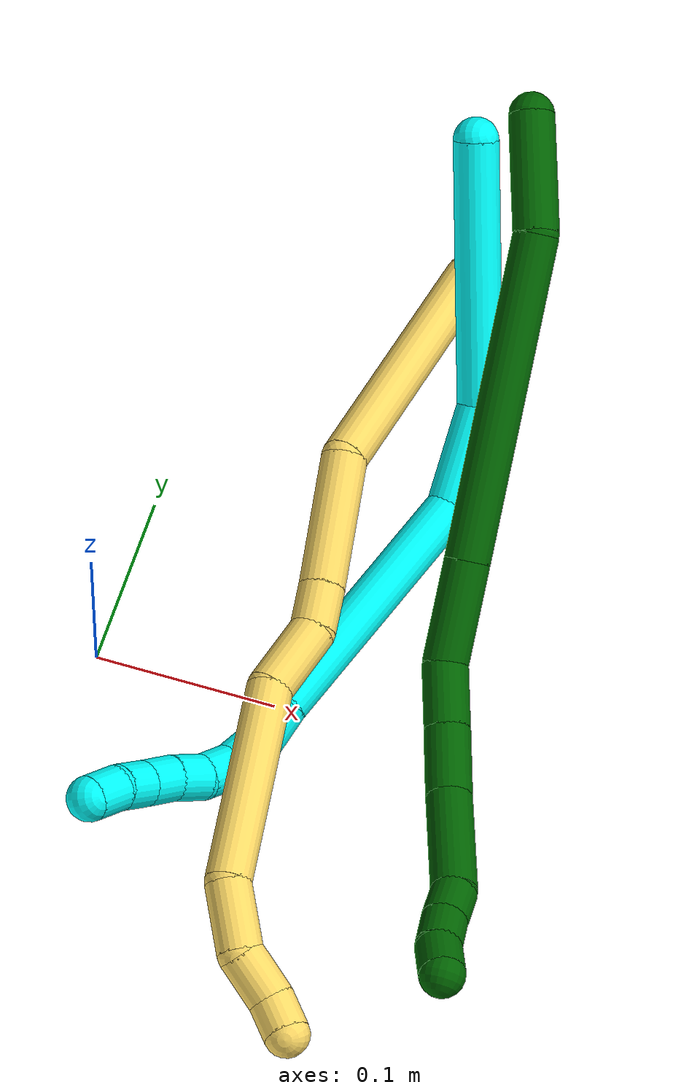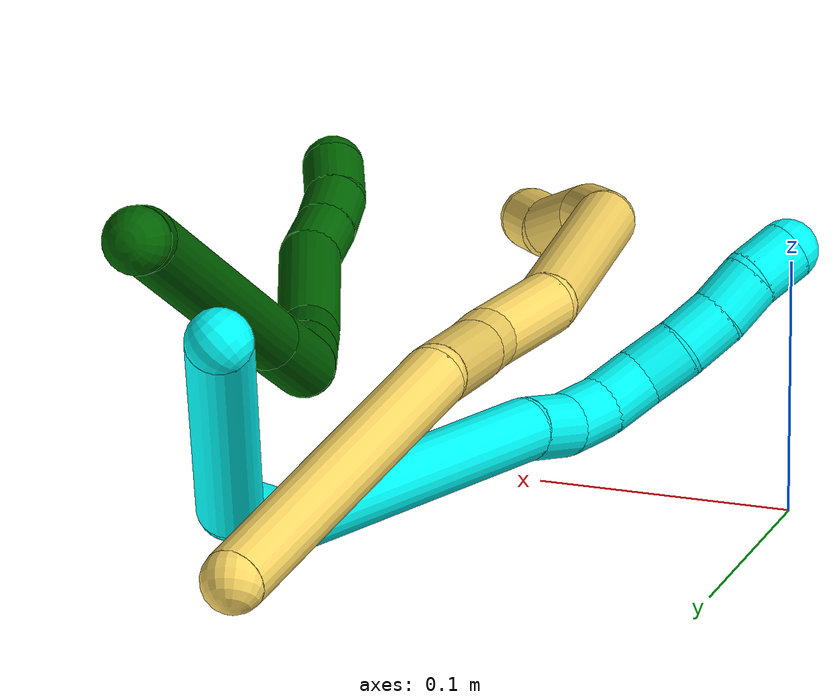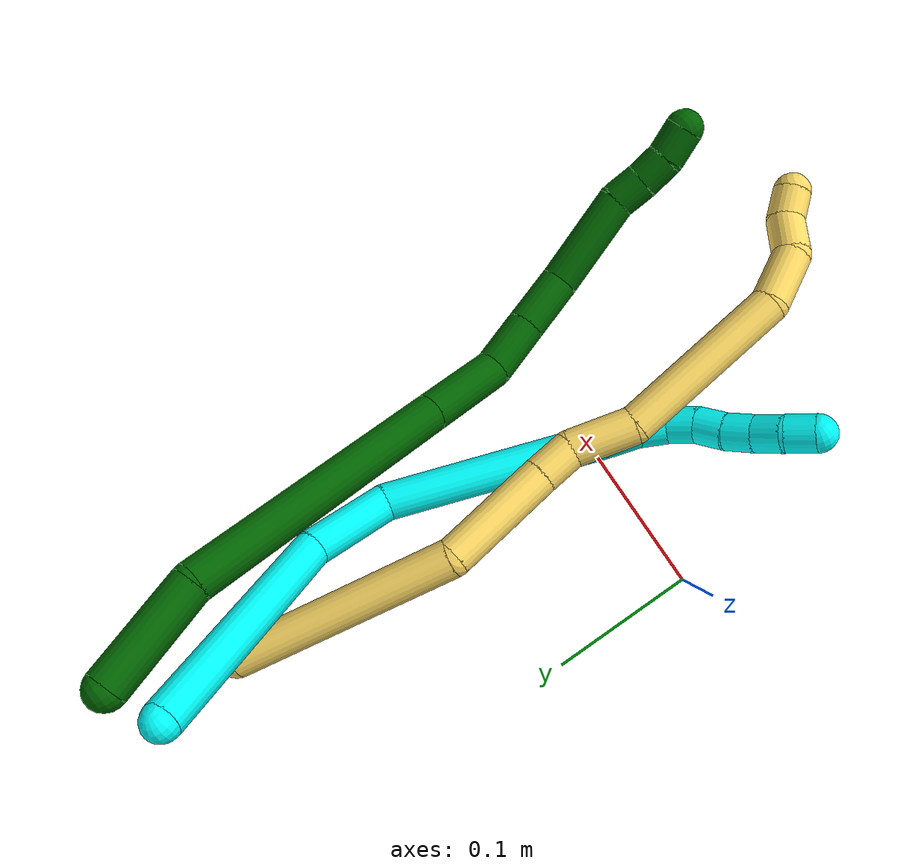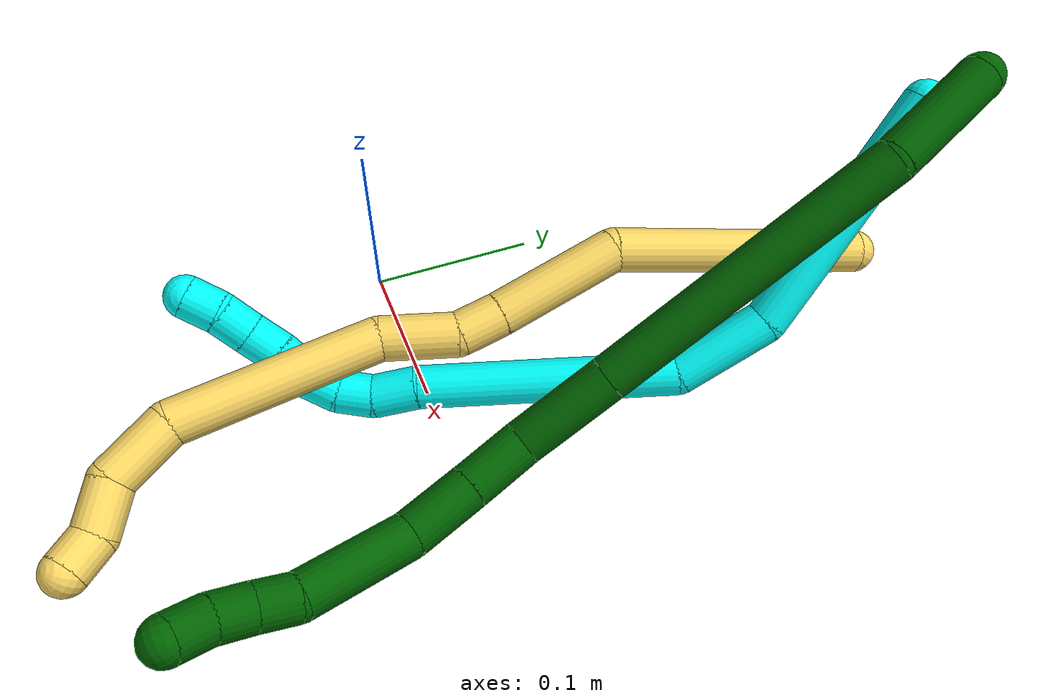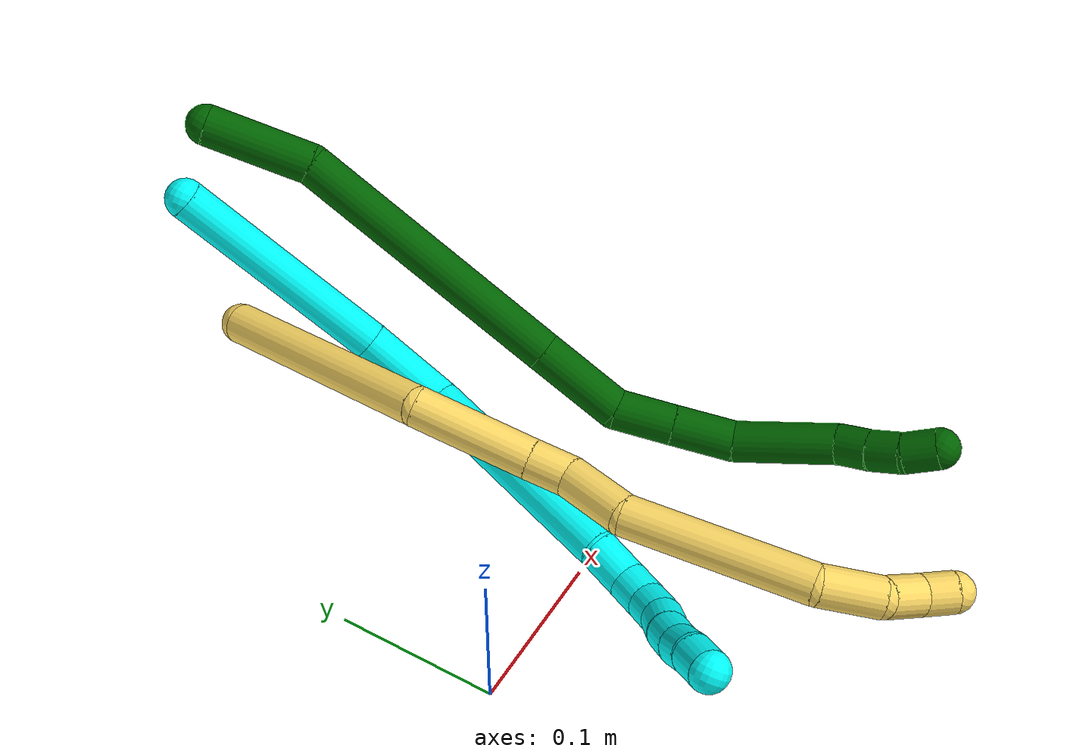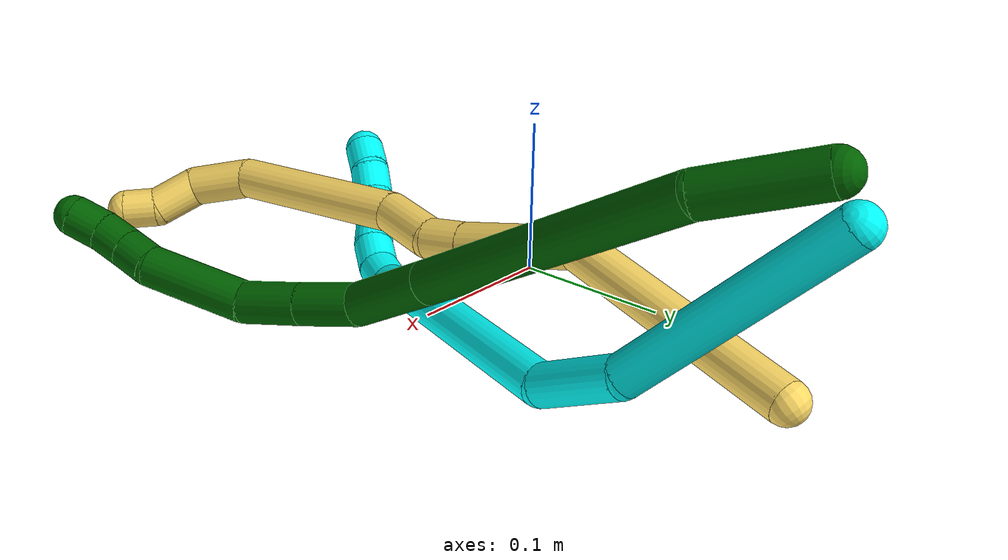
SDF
<sdf version="1.7">
 <world name="default">
  <model name="3">
   <static>0</static>
   <link name="3">
    <collision name="collision-cylinder-e_1_1_4">
     <pose>0.029283 -0.063951 -0.01992 1.87276 0.412139 0.553531</pose>
     <geometry><cylinder><radius>0.0125</radius><length>0.146206</length></cylinder></geometry>
     <surface>
      <friction><ode><mu>1.16</mu><mu2>1.16</mu2><slip1>0</slip1><slip2>0</slip2></ode></friction>
      <contact><ode><kp>1e+06</kp><kd>1</kd><max_vel>0</max_vel><min_depth>0.001</min_depth></ode></contact>
     </surface>
    </collision>
    <visual name="visual-cylinder-e_1_1_4">
     <pose>0.029283 -0.063951 -0.01992 1.87276 0.412139 0.553531</pose>
     <geometry><cylinder><radius>0.0125</radius><length>0.146206</length></cylinder></geometry>
     <material><ambient>0.003922 1 0.996078 1</ambient></material>
    </visual>
    <collision name="collision-cylinder-e_2_4_5">
     <pose>0.058099 -0.155632 -0.047689 1.84662 -0.016202 -0.021424</pose>
     <geometry><cylinder><radius>0.0125</radius><length>0.057645</length></cylinder></geometry>
     <surface>
      <friction><ode><mu>1.16</mu><mu2>1.16</mu2><slip1>0</slip1><slip2>0</slip2></ode></friction>
      <contact><ode><kp>1e+06</kp><kd>1</kd><max_vel>0</max_vel><min_depth>0.001</min_depth></ode></contact>
     </surface>
    </collision>
    <visual name="visual-cylinder-e_2_4_5">
     <pose>0.058099 -0.155632 -0.047689 1.84662 -0.016202 -0.021424</pose>
     <geometry><cylinder><radius>0.0125</radius><length>0.057645</length></cylinder></geometry>
     <material><ambient>0.003922 1 0.996078 1</ambient></material>
    </visual>
    <collision name="collision-cylinder-e_3_5_6">
     <pose>0.020545 -0.245709 -0.071788 1.82576 -0.522293 -0.665917</pose>
     <geometry><cylinder><radius>0.0125</radius><length>0.148685</length></cylinder></geometry>
     <surface>
      <friction><ode><mu>1.16</mu><mu2>1.16</mu2><slip1>0</slip1><slip2>0</slip2></ode></friction>
      <contact><ode><kp>1e+06</kp><kd>1</kd><max_vel>0</max_vel><min_depth>0.001</min_depth></ode></contact>
     </surface>
    </collision>
    <visual name="visual-cylinder-e_3_5_6">
     <pose>0.020545 -0.245709 -0.071788 1.82576 -0.522293 -0.665917</pose>
     <geometry><cylinder><radius>0.0125</radius><length>0.148685</length></cylinder></geometry>
     <material><ambient>0.003922 1 0.996078 1</ambient></material>
    </visual>
    <collision name="collision-cylinder-e_4_6_7">
     <pose>-0.021001 -0.319684 -0.092244 1.91791 -0.346106 -0.488308</pose>
     <geometry><cylinder><radius>0.0125</radius><length>0.026286</length></cylinder></geometry>
     <surface>
      <friction><ode><mu>1.16</mu><mu2>1.16</mu2><slip1>0</slip1><slip2>0</slip2></ode></friction>
      <contact><ode><kp>1e+06</kp><kd>1</kd><max_vel>0</max_vel><min_depth>0.001</min_depth></ode></contact>
     </surface>
    </collision>
    <visual name="visual-cylinder-e_4_6_7">
     <pose>-0.021001 -0.319684 -0.092244 1.91791 -0.346106 -0.488308</pose>
     <geometry><cylinder><radius>0.0125</radius><length>0.026286</length></cylinder></geometry>
     <material><ambient>0.003922 1 0.996078 1</ambient></material>
    </visual>
    <collision name="collision-cylinder-e_5_7_8">
     <pose>-0.032267 -0.338796 -0.098559 1.84543 -0.718988 -0.921446</pose>
     <geometry><cylinder><radius>0.0125</radius><length>0.020672</length></cylinder></geometry>
     <surface>
      <friction><ode><mu>1.16</mu><mu2>1.16</mu2><slip1>0</slip1><slip2>0</slip2></ode></friction>
      <contact><ode><kp>1e+06</kp><kd>1</kd><max_vel>0</max_vel><min_depth>0.001</min_depth></ode></contact>
     </surface>
    </collision>
    <visual name="visual-cylinder-e_5_7_8">
     <pose>-0.032267 -0.338796 -0.098559 1.84543 -0.718988 -0.921446</pose>
     <geometry><cylinder><radius>0.0125</radius><length>0.020672</length></cylinder></geometry>
     <material><ambient>0.003922 1 0.996078 1</ambient></material>
    </visual>
    <collision name="collision-cylinder-e_6_8_9">
     <pose>-0.047885 -0.351312 -0.101465 1.72792 -1.04666 -1.18833</pose>
     <geometry><cylinder><radius>0.0125</radius><length>0.020352</length></cylinder></geometry>
     <surface>
      <friction><ode><mu>1.16</mu><mu2>1.16</mu2><slip1>0</slip1><slip2>0</slip2></ode></friction>
      <contact><ode><kp>1e+06</kp><kd>1</kd><max_vel>0</max_vel><min_depth>0.001</min_depth></ode></contact>
     </surface>
    </collision>
    <visual name="visual-cylinder-e_6_8_9">
     <pose>-0.047885 -0.351312 -0.101465 1.72792 -1.04666 -1.18833</pose>
     <geometry><cylinder><radius>0.0125</radius><length>0.020352</length></cylinder></geometry>
     <material><ambient>0.003922 1 0.996078 1</ambient></material>
    </visual>
    <collision name="collision-cylinder-e_7_9_10">
     <pose>-0.066335 -0.358797 -0.1034 2.0048 -1.29715 -1.74115</pose>
     <geometry><cylinder><radius>0.0125</radius><length>0.020025</length></cylinder></geometry>
     <surface>
      <friction><ode><mu>1.16</mu><mu2>1.16</mu2><slip1>0</slip1><slip2>0</slip2></ode></friction>
      <contact><ode><kp>1e+06</kp><kd>1</kd><max_vel>0</max_vel><min_depth>0.001</min_depth></ode></contact>
     </surface>
    </collision>
    <visual name="visual-cylinder-e_7_9_10">
     <pose>-0.066335 -0.358797 -0.1034 2.0048 -1.29715 -1.74115</pose>
     <geometry><cylinder><radius>0.0125</radius><length>0.020025</length></cylinder></geometry>
     <material><ambient>0.003922 1 0.996078 1</ambient></material>
    </visual>
    <collision name="collision-cylinder-e_8_10_11">
     <pose>-0.08529 -0.364975 -0.104866 1.65875 -1.18921 -1.2722</pose>
     <geometry><cylinder><radius>0.0125</radius><length>0.020074</length></cylinder></geometry>
     <surface>
      <friction><ode><mu>1.16</mu><mu2>1.16</mu2><slip1>0</slip1><slip2>0</slip2></ode></friction>
      <contact><ode><kp>1e+06</kp><kd>1</kd><max_vel>0</max_vel><min_depth>0.001</min_depth></ode></contact>
     </surface>
    </collision>
    <visual name="visual-cylinder-e_8_10_11">
     <pose>-0.08529 -0.364975 -0.104866 1.65875 -1.18921 -1.2722</pose>
     <geometry><cylinder><radius>0.0125</radius><length>0.020074</length></cylinder></geometry>
     <material><ambient>0.003922 1 0.996078 1</ambient></material>
    </visual>
    <collision name="collision-cylinder-e_9_11_12">
     <pose>-0.103946 -0.372118 -0.104113 1.26446 -1.20425 -0.932796</pose>
     <geometry><cylinder><radius>0.0125</radius><length>0.020012</length></cylinder></geometry>
     <surface>
      <friction><ode><mu>1.16</mu><mu2>1.16</mu2><slip1>0</slip1><slip2>0</slip2></ode></friction>
      <contact><ode><kp>1e+06</kp><kd>1</kd><max_vel>0</max_vel><min_depth>0.001</min_depth></ode></contact>
     </surface>
    </collision>
    <visual name="visual-cylinder-e_9_11_12">
     <pose>-0.103946 -0.372118 -0.104113 1.26446 -1.20425 -0.932796</pose>
     <geometry><cylinder><radius>0.0125</radius><length>0.020012</length></cylinder></geometry>
     <material><ambient>0.003922 1 0.996078 1</ambient></material>
    </visual>
    <collision name="collision-cylinder-e_10_12_2">
     <pose>-0.121983 -0.380484 -0.103609 1.68697 -1.05067 -1.1545</pose>
     <geometry><cylinder><radius>0.0125</radius><length>0.020043</length></cylinder></geometry>
     <surface>
      <friction><ode><mu>1.16</mu><mu2>1.16</mu2><slip1>0</slip1><slip2>0</slip2></ode></friction>
      <contact><ode><kp>1e+06</kp><kd>1</kd><max_vel>0</max_vel><min_depth>0.001</min_depth></ode></contact>
     </surface>
    </collision>
    <visual name="visual-cylinder-e_10_12_2">
     <pose>-0.121983 -0.380484 -0.103609 1.68697 -1.05067 -1.1545</pose>
     <geometry><cylinder><radius>0.0125</radius><length>0.020043</length></cylinder></geometry>
     <material><ambient>0.003922 1 0.996078 1</ambient></material>
    </visual>
    <collision name="collision-sphere-2">
     <pose>-0.130679 -0.385431 -0.104186 0 -0 0</pose>
     <geometry><sphere><radius>0.0125</radius></sphere></geometry>
     <surface>
      <friction><ode><mu>1.16</mu><mu2>1.16</mu2><slip1>0</slip1><slip2>0</slip2></ode></friction>
      <contact><ode><kp>1e+06</kp><kd>1</kd><max_vel>0</max_vel><min_depth>0.001</min_depth></ode></contact>
     </surface>
    </collision>
    <visual name="visual-sphere-2">
     <pose>-0.130679 -0.385431 -0.104186 0 -0 0</pose>
     <geometry><sphere><radius>0.0125</radius></sphere></geometry>
     <material><ambient>0.003922 1 0.996078 1</ambient></material>
    </visual>
    <collision name="collision-sphere-12">
     <pose>-0.113287 -0.375537 -0.103032 0 -0 0</pose>
     <geometry><sphere><radius>0.0125</radius></sphere></geometry>
     <surface>
      <friction><ode><mu>1.16</mu><mu2>1.16</mu2><slip1>0</slip1><slip2>0</slip2></ode></friction>
      <contact><ode><kp>1e+06</kp><kd>1</kd><max_vel>0</max_vel><min_depth>0.001</min_depth></ode></contact>
     </surface>
    </collision>
    <visual name="visual-sphere-12">
     <pose>-0.113287 -0.375537 -0.103032 0 -0 0</pose>
     <geometry><sphere><radius>0.0125</radius></sphere></geometry>
     <material><ambient>0.003922 1 0.996078 1</ambient></material>
    </visual>
    <collision name="collision-sphere-11">
     <pose>-0.094605 -0.368699 -0.105194 0 -0 0</pose>
     <geometry><sphere><radius>0.0125</radius></sphere></geometry>
     <surface>
      <friction><ode><mu>1.16</mu><mu2>1.16</mu2><slip1>0</slip1><slip2>0</slip2></ode></friction>
      <contact><ode><kp>1e+06</kp><kd>1</kd><max_vel>0</max_vel><min_depth>0.001</min_depth></ode></contact>
     </surface>
    </collision>
    <visual name="visual-sphere-11">
     <pose>-0.094605 -0.368699 -0.105194 0 -0 0</pose>
     <geometry><sphere><radius>0.0125</radius></sphere></geometry>
     <material><ambient>0.003922 1 0.996078 1</ambient></material>
    </visual>
    <collision name="collision-sphere-10">
     <pose>-0.075975 -0.361252 -0.104538 0 -0 0</pose>
     <geometry><sphere><radius>0.0125</radius></sphere></geometry>
     <surface>
      <friction><ode><mu>1.16</mu><mu2>1.16</mu2><slip1>0</slip1><slip2>0</slip2></ode></friction>
      <contact><ode><kp>1e+06</kp><kd>1</kd><max_vel>0</max_vel><min_depth>0.001</min_depth></ode></contact>
     </surface>
    </collision>
    <visual name="visual-sphere-10">
     <pose>-0.075975 -0.361252 -0.104538 0 -0 0</pose>
     <geometry><sphere><radius>0.0125</radius></sphere></geometry>
     <material><ambient>0.003922 1 0.996078 1</ambient></material>
    </visual>
    <collision name="collision-sphere-9">
     <pose>-0.056695 -0.356342 -0.102262 0 -0 0</pose>
     <geometry><sphere><radius>0.0125</radius></sphere></geometry>
     <surface>
      <friction><ode><mu>1.16</mu><mu2>1.16</mu2><slip1>0</slip1><slip2>0</slip2></ode></friction>
      <contact><ode><kp>1e+06</kp><kd>1</kd><max_vel>0</max_vel><min_depth>0.001</min_depth></ode></contact>
     </surface>
    </collision>
    <visual name="visual-sphere-9">
     <pose>-0.056695 -0.356342 -0.102262 0 -0 0</pose>
     <geometry><sphere><radius>0.0125</radius></sphere></geometry>
     <material><ambient>0.003922 1 0.996078 1</ambient></material>
    </visual>
    <collision name="collision-sphere-4">
     <pose>0.058566 -0.127903 -0.03984 0 -0 0</pose>
     <geometry><sphere><radius>0.0125</radius></sphere></geometry>
     <surface>
      <friction><ode><mu>1.16</mu><mu2>1.16</mu2><slip1>0</slip1><slip2>0</slip2></ode></friction>
      <contact><ode><kp>1e+06</kp><kd>1</kd><max_vel>0</max_vel><min_depth>0.001</min_depth></ode></contact>
     </surface>
    </collision>
    <visual name="visual-sphere-4">
     <pose>0.058566 -0.127903 -0.03984 0 -0 0</pose>
     <geometry><sphere><radius>0.0125</radius></sphere></geometry>
     <material><ambient>0.003922 1 0.996078 1</ambient></material>
    </visual>
    <collision name="collision-sphere-1">
     <geometry><sphere><radius>0.0125</radius></sphere></geometry>
     <surface>
      <friction><ode><mu>1.16</mu><mu2>1.16</mu2><slip1>0</slip1><slip2>0</slip2></ode></friction>
      <contact><ode><kp>1e+06</kp><kd>1</kd><max_vel>0</max_vel><min_depth>0.001</min_depth></ode></contact>
     </surface>
    </collision>
    <visual name="visual-sphere-1">
     <geometry><sphere><radius>0.0125</radius></sphere></geometry>
     <material><ambient>0.003922 1 0.996078 1</ambient></material>
    </visual>
    <collision name="collision-sphere-8">
     <pose>-0.039075 -0.346282 -0.100668 0 -0 0</pose>
     <geometry><sphere><radius>0.0125</radius></sphere></geometry>
     <surface>
      <friction><ode><mu>1.16</mu><mu2>1.16</mu2><slip1>0</slip1><slip2>0</slip2></ode></friction>
      <contact><ode><kp>1e+06</kp><kd>1</kd><max_vel>0</max_vel><min_depth>0.001</min_depth></ode></contact>
     </surface>
    </collision>
    <visual name="visual-sphere-8">
     <pose>-0.039075 -0.346282 -0.100668 0 -0 0</pose>
     <geometry><sphere><radius>0.0125</radius></sphere></geometry>
     <material><ambient>0.003922 1 0.996078 1</ambient></material>
    </visual>
    <collision name="collision-sphere-5">
     <pose>0.057632 -0.183361 -0.055537 0 -0 0</pose>
     <geometry><sphere><radius>0.0125</radius></sphere></geometry>
     <surface>
      <friction><ode><mu>1.16</mu><mu2>1.16</mu2><slip1>0</slip1><slip2>0</slip2></ode></friction>
      <contact><ode><kp>1e+06</kp><kd>1</kd><max_vel>0</max_vel><min_depth>0.001</min_depth></ode></contact>
     </surface>
    </collision>
    <visual name="visual-sphere-5">
     <pose>0.057632 -0.183361 -0.055537 0 -0 0</pose>
     <geometry><sphere><radius>0.0125</radius></sphere></geometry>
     <material><ambient>0.003922 1 0.996078 1</ambient></material>
    </visual>
    <collision name="collision-sphere-6">
     <pose>-0.016543 -0.308058 -0.088038 0 -0 0</pose>
     <geometry><sphere><radius>0.0125</radius></sphere></geometry>
     <surface>
      <friction><ode><mu>1.16</mu><mu2>1.16</mu2><slip1>0</slip1><slip2>0</slip2></ode></friction>
      <contact><ode><kp>1e+06</kp><kd>1</kd><max_vel>0</max_vel><min_depth>0.001</min_depth></ode></contact>
     </surface>
    </collision>
    <visual name="visual-sphere-6">
     <pose>-0.016543 -0.308058 -0.088038 0 -0 0</pose>
     <geometry><sphere><radius>0.0125</radius></sphere></geometry>
     <material><ambient>0.003922 1 0.996078 1</ambient></material>
    </visual>
    <collision name="collision-sphere-7">
     <pose>-0.02546 -0.33131 -0.09645 0 -0 0</pose>
     <geometry><sphere><radius>0.0125</radius></sphere></geometry>
     <surface>
      <friction><ode><mu>1.16</mu><mu2>1.16</mu2><slip1>0</slip1><slip2>0</slip2></ode></friction>
      <contact><ode><kp>1e+06</kp><kd>1</kd><max_vel>0</max_vel><min_depth>0.001</min_depth></ode></contact>
     </surface>
    </collision>
    <visual name="visual-sphere-7">
     <pose>-0.02546 -0.33131 -0.09645 0 -0 0</pose>
     <geometry><sphere><radius>0.0125</radius></sphere></geometry>
     <material><ambient>0.003922 1 0.996078 1</ambient></material>
    </visual>
    <inertial>
     <pose>0.001852 -0.213991 -0.062396 0 -0 0</pose>
     <mass>0.5</mass>
     <inertia>
      <ixx>0.000383</ixx>
      <ixy>0</ixy>
      <ixz>0</ixz>
      <iyy>-4.1e-05</iyy>
      <iyz>0</iyz>
      <izz>0.000525</izz>
     </inertia>
    </inertial>
   </link>
   <pose>0.122764 0.286833 0.146912 0.359959 0.747107 0.455718</pose>
  </model>
  <model name="5">
   <static>0</static>
   <link name="5">
    <collision name="collision-cylinder-e_1_1_4">
     <pose>0.00915 -0.048112 0.059326 0.681399 0.119227 0.042313</pose>
     <geometry><cylinder><radius>0.0125</radius><length>0.153858</length></cylinder></geometry>
     <surface>
      <friction><ode><mu>1.16</mu><mu2>1.16</mu2><slip1>0</slip1><slip2>0</slip2></ode></friction>
      <contact><ode><kp>1e+06</kp><kd>1</kd><max_vel>0</max_vel><min_depth>0.001</min_depth></ode></contact>
     </surface>
    </collision>
    <visual name="visual-cylinder-e_1_1_4">
     <pose>0.00915 -0.048112 0.059326 0.681399 0.119227 0.042313</pose>
     <geometry><cylinder><radius>0.0125</radius><length>0.153858</length></cylinder></geometry>
     <material><ambient>1 0.858824 0.4 1</ambient></material>
    </visual>
    <collision name="collision-cylinder-e_2_4_5">
     <pose>0.038492 -0.120794 0.13782 0.908272 0.574917 0.28667</pose>
     <geometry><cylinder><radius>0.0125</radius><length>0.074264</length></cylinder></geometry>
     <surface>
      <friction><ode><mu>1.16</mu><mu2>1.16</mu2><slip1>0</slip1><slip2>0</slip2></ode></friction>
      <contact><ode><kp>1e+06</kp><kd>1</kd><max_vel>0</max_vel><min_depth>0.001</min_depth></ode></contact>
     </surface>
    </collision>
    <visual name="visual-cylinder-e_2_4_5">
     <pose>0.038492 -0.120794 0.13782 0.908272 0.574917 0.28667</pose>
     <geometry><cylinder><radius>0.0125</radius><length>0.074264</length></cylinder></geometry>
     <material><ambient>1 0.858824 0.4 1</ambient></material>
    </visual>
    <collision name="collision-cylinder-e_3_5_6">
     <pose>0.06497 -0.153638 0.164184 0.855016 0.520623 0.241526</pose>
     <geometry><cylinder><radius>0.0125</radius><length>0.025279</length></cylinder></geometry>
     <surface>
      <friction><ode><mu>1.16</mu><mu2>1.16</mu2><slip1>0</slip1><slip2>0</slip2></ode></friction>
      <contact><ode><kp>1e+06</kp><kd>1</kd><max_vel>0</max_vel><min_depth>0.001</min_depth></ode></contact>
     </surface>
    </collision>
    <visual name="visual-cylinder-e_3_5_6">
     <pose>0.06497 -0.153638 0.164184 0.855016 0.520623 0.241526</pose>
     <geometry><cylinder><radius>0.0125</radius><length>0.025279</length></cylinder></geometry>
     <material><ambient>1 0.858824 0.4 1</ambient></material>
    </visual>
    <collision name="collision-cylinder-e_4_6_7">
     <pose>0.073647 -0.177868 0.185393 0.850111 0.112075 0.050773</pose>
     <geometry><cylinder><radius>0.0125</radius><length>0.042741</length></cylinder></geometry>
     <surface>
      <friction><ode><mu>1.16</mu><mu2>1.16</mu2><slip1>0</slip1><slip2>0</slip2></ode></friction>
      <contact><ode><kp>1e+06</kp><kd>1</kd><max_vel>0</max_vel><min_depth>0.001</min_depth></ode></contact>
     </surface>
    </collision>
    <visual name="visual-cylinder-e_4_6_7">
     <pose>0.073647 -0.177868 0.185393 0.850111 0.112075 0.050773</pose>
     <geometry><cylinder><radius>0.0125</radius><length>0.042741</length></cylinder></geometry>
     <material><ambient>1 0.858824 0.4 1</ambient></material>
    </visual>
    <collision name="collision-cylinder-e_5_7_8">
     <pose>0.102666 -0.228608 0.237306 0.742576 0.477663 0.18903</pose>
     <geometry><cylinder><radius>0.0125</radius><length>0.115852</length></cylinder></geometry>
     <surface>
      <friction><ode><mu>1.16</mu><mu2>1.16</mu2><slip1>0</slip1><slip2>0</slip2></ode></friction>
      <contact><ode><kp>1e+06</kp><kd>1</kd><max_vel>0</max_vel><min_depth>0.001</min_depth></ode></contact>
     </surface>
    </collision>
    <visual name="visual-cylinder-e_5_7_8">
     <pose>0.102666 -0.228608 0.237306 0.742576 0.477663 0.18903</pose>
     <geometry><cylinder><radius>0.0125</radius><length>0.115852</length></cylinder></geometry>
     <material><ambient>1 0.858824 0.4 1</ambient></material>
    </visual>
    <collision name="collision-cylinder-e_6_8_9">
     <pose>0.144288 -0.271684 0.283917 0.760649 0.894777 0.379063</pose>
     <geometry><cylinder><radius>0.0125</radius><length>0.038441</length></cylinder></geometry>
     <surface>
      <friction><ode><mu>1.16</mu><mu2>1.16</mu2><slip1>0</slip1><slip2>0</slip2></ode></friction>
      <contact><ode><kp>1e+06</kp><kd>1</kd><max_vel>0</max_vel><min_depth>0.001</min_depth></ode></contact>
     </surface>
    </collision>
    <visual name="visual-cylinder-e_6_8_9">
     <pose>0.144288 -0.271684 0.283917 0.760649 0.894777 0.379063</pose>
     <geometry><cylinder><radius>0.0125</radius><length>0.038441</length></cylinder></geometry>
     <material><ambient>1 0.858824 0.4 1</ambient></material>
    </visual>
    <collision name="collision-cylinder-e_7_9_10">
     <pose>0.173346 -0.281874 0.294163 0.891329 1.39893 0.764354</pose>
     <geometry><cylinder><radius>0.0125</radius><length>0.028551</length></cylinder></geometry>
     <surface>
      <friction><ode><mu>1.16</mu><mu2>1.16</mu2><slip1>0</slip1><slip2>0</slip2></ode></friction>
      <contact><ode><kp>1e+06</kp><kd>1</kd><max_vel>0</max_vel><min_depth>0.001</min_depth></ode></contact>
     </surface>
    </collision>
    <visual name="visual-cylinder-e_7_9_10">
     <pose>0.173346 -0.281874 0.294163 0.891329 1.39893 0.764354</pose>
     <geometry><cylinder><radius>0.0125</radius><length>0.028551</length></cylinder></geometry>
     <material><ambient>1 0.858824 0.4 1</ambient></material>
    </visual>
    <collision name="collision-cylinder-e_8_10_2">
     <pose>0.196215 -0.285692 0.301102 0.341223 0.993374 0.186222</pose>
     <geometry><cylinder><radius>0.0125</radius><length>0.021015</length></cylinder></geometry>
     <surface>
      <friction><ode><mu>1.16</mu><mu2>1.16</mu2><slip1>0</slip1><slip2>0</slip2></ode></friction>
      <contact><ode><kp>1e+06</kp><kd>1</kd><max_vel>0</max_vel><min_depth>0.001</min_depth></ode></contact>
     </surface>
    </collision>
    <visual name="visual-cylinder-e_8_10_2">
     <pose>0.196215 -0.285692 0.301102 0.341223 0.993374 0.186222</pose>
     <geometry><cylinder><radius>0.0125</radius><length>0.021015</length></cylinder></geometry>
     <material><ambient>1 0.858824 0.4 1</ambient></material>
    </visual>
    <collision name="collision-sphere-2">
     <pose>0.205019 -0.287612 0.306506 0 -0 0</pose>
     <geometry><sphere><radius>0.0125</radius></sphere></geometry>
     <surface>
      <friction><ode><mu>1.16</mu><mu2>1.16</mu2><slip1>0</slip1><slip2>0</slip2></ode></friction>
      <contact><ode><kp>1e+06</kp><kd>1</kd><max_vel>0</max_vel><min_depth>0.001</min_depth></ode></contact>
     </surface>
    </collision>
    <visual name="visual-sphere-2">
     <pose>0.205019 -0.287612 0.306506 0 -0 0</pose>
     <geometry><sphere><radius>0.0125</radius></sphere></geometry>
     <material><ambient>1 0.858824 0.4 1</ambient></material>
    </visual>
    <collision name="collision-sphere-10">
     <pose>0.187412 -0.283773 0.295697 0 -0 0</pose>
     <geometry><sphere><radius>0.0125</radius></sphere></geometry>
     <surface>
      <friction><ode><mu>1.16</mu><mu2>1.16</mu2><slip1>0</slip1><slip2>0</slip2></ode></friction>
      <contact><ode><kp>1e+06</kp><kd>1</kd><max_vel>0</max_vel><min_depth>0.001</min_depth></ode></contact>
     </surface>
    </collision>
    <visual name="visual-sphere-10">
     <pose>0.187412 -0.283773 0.295697 0 -0 0</pose>
     <geometry><sphere><radius>0.0125</radius></sphere></geometry>
     <material><ambient>1 0.858824 0.4 1</ambient></material>
    </visual>
    <collision name="collision-sphere-9">
     <pose>0.159281 -0.279974 0.292628 0 -0 0</pose>
     <geometry><sphere><radius>0.0125</radius></sphere></geometry>
     <surface>
      <friction><ode><mu>1.16</mu><mu2>1.16</mu2><slip1>0</slip1><slip2>0</slip2></ode></friction>
      <contact><ode><kp>1e+06</kp><kd>1</kd><max_vel>0</max_vel><min_depth>0.001</min_depth></ode></contact>
     </surface>
    </collision>
    <visual name="visual-sphere-9">
     <pose>0.159281 -0.279974 0.292628 0 -0 0</pose>
     <geometry><sphere><radius>0.0125</radius></sphere></geometry>
     <material><ambient>1 0.858824 0.4 1</ambient></material>
    </visual>
    <collision name="collision-sphere-4">
     <pose>0.018301 -0.096224 0.118652 0 -0 0</pose>
     <geometry><sphere><radius>0.0125</radius></sphere></geometry>
     <surface>
      <friction><ode><mu>1.16</mu><mu2>1.16</mu2><slip1>0</slip1><slip2>0</slip2></ode></friction>
      <contact><ode><kp>1e+06</kp><kd>1</kd><max_vel>0</max_vel><min_depth>0.001</min_depth></ode></contact>
     </surface>
    </collision>
    <visual name="visual-sphere-4">
     <pose>0.018301 -0.096224 0.118652 0 -0 0</pose>
     <geometry><sphere><radius>0.0125</radius></sphere></geometry>
     <material><ambient>1 0.858824 0.4 1</ambient></material>
    </visual>
    <collision name="collision-sphere-1">
     <geometry><sphere><radius>0.0125</radius></sphere></geometry>
     <surface>
      <friction><ode><mu>1.16</mu><mu2>1.16</mu2><slip1>0</slip1><slip2>0</slip2></ode></friction>
      <contact><ode><kp>1e+06</kp><kd>1</kd><max_vel>0</max_vel><min_depth>0.001</min_depth></ode></contact>
     </surface>
    </collision>
    <visual name="visual-sphere-1">
     <geometry><sphere><radius>0.0125</radius></sphere></geometry>
     <material><ambient>1 0.858824 0.4 1</ambient></material>
    </visual>
    <collision name="collision-sphere-8">
     <pose>0.129295 -0.263393 0.275205 0 -0 0</pose>
     <geometry><sphere><radius>0.0125</radius></sphere></geometry>
     <surface>
      <friction><ode><mu>1.16</mu><mu2>1.16</mu2><slip1>0</slip1><slip2>0</slip2></ode></friction>
      <contact><ode><kp>1e+06</kp><kd>1</kd><max_vel>0</max_vel><min_depth>0.001</min_depth></ode></contact>
     </surface>
    </collision>
    <visual name="visual-sphere-8">
     <pose>0.129295 -0.263393 0.275205 0 -0 0</pose>
     <geometry><sphere><radius>0.0125</radius></sphere></geometry>
     <material><ambient>1 0.858824 0.4 1</ambient></material>
    </visual>
    <collision name="collision-sphere-5">
     <pose>0.058683 -0.145364 0.156989 0 -0 0</pose>
     <geometry><sphere><radius>0.0125</radius></sphere></geometry>
     <surface>
      <friction><ode><mu>1.16</mu><mu2>1.16</mu2><slip1>0</slip1><slip2>0</slip2></ode></friction>
      <contact><ode><kp>1e+06</kp><kd>1</kd><max_vel>0</max_vel><min_depth>0.001</min_depth></ode></contact>
     </surface>
    </collision>
    <visual name="visual-sphere-5">
     <pose>0.058683 -0.145364 0.156989 0 -0 0</pose>
     <geometry><sphere><radius>0.0125</radius></sphere></geometry>
     <material><ambient>1 0.858824 0.4 1</ambient></material>
    </visual>
    <collision name="collision-sphere-6">
     <pose>0.071257 -0.161912 0.171379 0 -0 0</pose>
     <geometry><sphere><radius>0.0125</radius></sphere></geometry>
     <surface>
      <friction><ode><mu>1.16</mu><mu2>1.16</mu2><slip1>0</slip1><slip2>0</slip2></ode></friction>
      <contact><ode><kp>1e+06</kp><kd>1</kd><max_vel>0</max_vel><min_depth>0.001</min_depth></ode></contact>
     </surface>
    </collision>
    <visual name="visual-sphere-6">
     <pose>0.071257 -0.161912 0.171379 0 -0 0</pose>
     <geometry><sphere><radius>0.0125</radius></sphere></geometry>
     <material><ambient>1 0.858824 0.4 1</ambient></material>
    </visual>
    <collision name="collision-sphere-7">
     <pose>0.076037 -0.193824 0.199407 0 -0 0</pose>
     <geometry><sphere><radius>0.0125</radius></sphere></geometry>
     <surface>
      <friction><ode><mu>1.16</mu><mu2>1.16</mu2><slip1>0</slip1><slip2>0</slip2></ode></friction>
      <contact><ode><kp>1e+06</kp><kd>1</kd><max_vel>0</max_vel><min_depth>0.001</min_depth></ode></contact>
     </surface>
    </collision>
    <visual name="visual-sphere-7">
     <pose>0.076037 -0.193824 0.199407 0 -0 0</pose>
     <geometry><sphere><radius>0.0125</radius></sphere></geometry>
     <material><ambient>1 0.858824 0.4 1</ambient></material>
    </visual>
    <inertial>
     <pose>0.071139 -0.157678 0.169139 0 -0 0</pose>
     <mass>0.5</mass>
     <inertia>
      <ixx>0.000532</ixx>
      <ixy>0</ixy>
      <ixz>0</ixz>
      <iyy>0.000414</iyy>
      <iyz>0</iyz>
      <izz>0.000204</izz>
     </inertia>
    </inertial>
   </link>
   <pose>0.127253 0.262619 0.048689 0.594864 0.477874 -0.404186</pose>
  </model>
  <model name="6">
   <static>0</static>
   <link name="6">
    <collision name="collision-cylinder-e_1_1_4">
     <pose>0.007532 -0.005995 -0.031546 2.9538 0.230411 1.77536</pose>
     <geometry><cylinder><radius>0.0125</radius><length>0.065963</length></cylinder></geometry>
     <surface>
      <friction><ode><mu>1.16</mu><mu2>1.16</mu2><slip1>0</slip1><slip2>0</slip2></ode></friction>
      <contact><ode><kp>1e+06</kp><kd>1</kd><max_vel>0</max_vel><min_depth>0.001</min_depth></ode></contact>
     </surface>
    </collision>
    <visual name="visual-cylinder-e_1_1_4">
     <pose>0.007532 -0.005995 -0.031546 2.9538 0.230411 1.77536</pose>
     <geometry><cylinder><radius>0.0125</radius><length>0.065963</length></cylinder></geometry>
     <material><ambient>0 0.392157 0.003922 1</ambient></material>
    </visual>
    <collision name="collision-cylinder-e_2_4_5">
     <pose>0.034066 0.000413 -0.148727 -2.99776 0.216166 -1.96941</pose>
     <geometry><cylinder><radius>0.0125</radius><length>0.177183</length></cylinder></geometry>
     <surface>
      <friction><ode><mu>1.16</mu><mu2>1.16</mu2><slip1>0</slip1><slip2>0</slip2></ode></friction>
      <contact><ode><kp>1e+06</kp><kd>1</kd><max_vel>0</max_vel><min_depth>0.001</min_depth></ode></contact>
     </surface>
    </collision>
    <visual name="visual-cylinder-e_2_4_5">
     <pose>0.034066 0.000413 -0.148727 -2.99776 0.216166 -1.96941</pose>
     <geometry><cylinder><radius>0.0125</radius><length>0.177183</length></cylinder></geometry>
     <material><ambient>0 0.392157 0.003922 1</ambient></material>
    </visual>
    <collision name="collision-cylinder-e_3_5_6">
     <pose>0.058871 0.016636 -0.261563 -3.00204 0.208228 -1.96258</pose>
     <geometry><cylinder><radius>0.0125</radius><length>0.056147</length></cylinder></geometry>
     <surface>
      <friction><ode><mu>1.16</mu><mu2>1.16</mu2><slip1>0</slip1><slip2>0</slip2></ode></friction>
      <contact><ode><kp>1e+06</kp><kd>1</kd><max_vel>0</max_vel><min_depth>0.001</min_depth></ode></contact>
     </surface>
    </collision>
    <visual name="visual-cylinder-e_3_5_6">
     <pose>0.058871 0.016636 -0.261563 -3.00204 0.208228 -1.96258</pose>
     <geometry><cylinder><radius>0.0125</radius><length>0.056147</length></cylinder></geometry>
     <material><ambient>0 0.392157 0.003922 1</ambient></material>
    </visual>
    <collision name="collision-cylinder-e_4_6_7">
     <pose>0.067018 0.015595 -0.306053 2.8675 0.129732 0.880368</pose>
     <geometry><cylinder><radius>0.0125</radius><length>0.036225</length></cylinder></geometry>
     <surface>
      <friction><ode><mu>1.16</mu><mu2>1.16</mu2><slip1>0</slip1><slip2>0</slip2></ode></friction>
      <contact><ode><kp>1e+06</kp><kd>1</kd><max_vel>0</max_vel><min_depth>0.001</min_depth></ode></contact>
     </surface>
    </collision>
    <visual name="visual-cylinder-e_4_6_7">
     <pose>0.067018 0.015595 -0.306053 2.8675 0.129732 0.880368</pose>
     <geometry><cylinder><radius>0.0125</radius><length>0.036225</length></cylinder></geometry>
     <material><ambient>0 0.392157 0.003922 1</ambient></material>
    </visual>
    <collision name="collision-cylinder-e_5_7_8">
     <pose>0.071473 0.00542 -0.34163 2.85883 0.11044 0.740878</pose>
     <geometry><cylinder><radius>0.0125</radius><length>0.038321</length></cylinder></geometry>
     <surface>
      <friction><ode><mu>1.16</mu><mu2>1.16</mu2><slip1>0</slip1><slip2>0</slip2></ode></friction>
      <contact><ode><kp>1e+06</kp><kd>1</kd><max_vel>0</max_vel><min_depth>0.001</min_depth></ode></contact>
     </surface>
    </collision>
    <visual name="visual-cylinder-e_5_7_8">
     <pose>0.071473 0.00542 -0.34163 2.85883 0.11044 0.740878</pose>
     <geometry><cylinder><radius>0.0125</radius><length>0.038321</length></cylinder></geometry>
     <material><ambient>0 0.392157 0.003922 1</ambient></material>
    </visual>
    <collision name="collision-cylinder-e_6_8_9">
     <pose>0.069132 -0.015652 -0.387145 2.61692 -0.14062 -0.512989</pose>
     <geometry><cylinder><radius>0.0125</radius><length>0.063546</length></cylinder></geometry>
     <surface>
      <friction><ode><mu>1.16</mu><mu2>1.16</mu2><slip1>0</slip1><slip2>0</slip2></ode></friction>
      <contact><ode><kp>1e+06</kp><kd>1</kd><max_vel>0</max_vel><min_depth>0.001</min_depth></ode></contact>
     </surface>
    </collision>
    <visual name="visual-cylinder-e_6_8_9">
     <pose>0.069132 -0.015652 -0.387145 2.61692 -0.14062 -0.512989</pose>
     <geometry><cylinder><radius>0.0125</radius><length>0.063546</length></cylinder></geometry>
     <material><ambient>0 0.392157 0.003922 1</ambient></material>
    </visual>
    <collision name="collision-cylinder-e_7_9_10">
     <pose>0.060687 -0.034769 -0.423388 2.78499 -0.393242 -1.67076</pose>
     <geometry><cylinder><radius>0.0125</radius><length>0.02083</length></cylinder></geometry>
     <surface>
      <friction><ode><mu>1.16</mu><mu2>1.16</mu2><slip1>0</slip1><slip2>0</slip2></ode></friction>
      <contact><ode><kp>1e+06</kp><kd>1</kd><max_vel>0</max_vel><min_depth>0.001</min_depth></ode></contact>
     </surface>
    </collision>
    <visual name="visual-cylinder-e_7_9_10">
     <pose>0.060687 -0.034769 -0.423388 2.78499 -0.393242 -1.67076</pose>
     <geometry><cylinder><radius>0.0125</radius><length>0.02083</length></cylinder></geometry>
     <material><ambient>0 0.392157 0.003922 1</ambient></material>
    </visual>
    <collision name="collision-cylinder-e_8_10_11">
     <pose>0.052951 -0.042403 -0.440848 2.67291 -0.376748 -1.3477</pose>
     <geometry><cylinder><radius>0.0125</radius><length>0.020361</length></cylinder></geometry>
     <surface>
      <friction><ode><mu>1.16</mu><mu2>1.16</mu2><slip1>0</slip1><slip2>0</slip2></ode></friction>
      <contact><ode><kp>1e+06</kp><kd>1</kd><max_vel>0</max_vel><min_depth>0.001</min_depth></ode></contact>
     </surface>
    </collision>
    <visual name="visual-cylinder-e_8_10_11">
     <pose>0.052951 -0.042403 -0.440848 2.67291 -0.376748 -1.3477</pose>
     <geometry><cylinder><radius>0.0125</radius><length>0.020361</length></cylinder></geometry>
     <material><ambient>0 0.392157 0.003922 1</ambient></material>
    </visual>
    <collision name="collision-cylinder-e_9_11_2">
     <pose>0.046759 -0.05326 -0.457385 2.45872 -0.230448 -0.629723</pose>
     <geometry><cylinder><radius>0.0125</radius><length>0.021424</length></cylinder></geometry>
     <surface>
      <friction><ode><mu>1.16</mu><mu2>1.16</mu2><slip1>0</slip1><slip2>0</slip2></ode></friction>
      <contact><ode><kp>1e+06</kp><kd>1</kd><max_vel>0</max_vel><min_depth>0.001</min_depth></ode></contact>
     </surface>
    </collision>
    <visual name="visual-cylinder-e_9_11_2">
     <pose>0.046759 -0.05326 -0.457385 2.45872 -0.230448 -0.629723</pose>
     <geometry><cylinder><radius>0.0125</radius><length>0.021424</length></cylinder></geometry>
     <material><ambient>0 0.392157 0.003922 1</ambient></material>
    </visual>
    <collision name="collision-sphere-2">
     <pose>0.044312 -0.059841 -0.465475 0 -0 0</pose>
     <geometry><sphere><radius>0.0125</radius></sphere></geometry>
     <surface>
      <friction><ode><mu>1.16</mu><mu2>1.16</mu2><slip1>0</slip1><slip2>0</slip2></ode></friction>
      <contact><ode><kp>1e+06</kp><kd>1</kd><max_vel>0</max_vel><min_depth>0.001</min_depth></ode></contact>
     </surface>
    </collision>
    <visual name="visual-sphere-2">
     <pose>0.044312 -0.059841 -0.465475 0 -0 0</pose>
     <geometry><sphere><radius>0.0125</radius></sphere></geometry>
     <material><ambient>0 0.392157 0.003922 1</ambient></material>
    </visual>
    <collision name="collision-sphere-11">
     <pose>0.049206 -0.04668 -0.449294 0 -0 0</pose>
     <geometry><sphere><radius>0.0125</radius></sphere></geometry>
     <surface>
      <friction><ode><mu>1.16</mu><mu2>1.16</mu2><slip1>0</slip1><slip2>0</slip2></ode></friction>
      <contact><ode><kp>1e+06</kp><kd>1</kd><max_vel>0</max_vel><min_depth>0.001</min_depth></ode></contact>
     </surface>
    </collision>
    <visual name="visual-sphere-11">
     <pose>0.049206 -0.04668 -0.449294 0 -0 0</pose>
     <geometry><sphere><radius>0.0125</radius></sphere></geometry>
     <material><ambient>0 0.392157 0.003922 1</ambient></material>
    </visual>
    <collision name="collision-sphere-10">
     <pose>0.056697 -0.038127 -0.432403 0 -0 0</pose>
     <geometry><sphere><radius>0.0125</radius></sphere></geometry>
     <surface>
      <friction><ode><mu>1.16</mu><mu2>1.16</mu2><slip1>0</slip1><slip2>0</slip2></ode></friction>
      <contact><ode><kp>1e+06</kp><kd>1</kd><max_vel>0</max_vel><min_depth>0.001</min_depth></ode></contact>
     </surface>
    </collision>
    <visual name="visual-sphere-10">
     <pose>0.056697 -0.038127 -0.432403 0 -0 0</pose>
     <geometry><sphere><radius>0.0125</radius></sphere></geometry>
     <material><ambient>0 0.392157 0.003922 1</ambient></material>
    </visual>
    <collision name="collision-sphere-9">
     <pose>0.064678 -0.031411 -0.414373 0 -0 0</pose>
     <geometry><sphere><radius>0.0125</radius></sphere></geometry>
     <surface>
      <friction><ode><mu>1.16</mu><mu2>1.16</mu2><slip1>0</slip1><slip2>0</slip2></ode></friction>
      <contact><ode><kp>1e+06</kp><kd>1</kd><max_vel>0</max_vel><min_depth>0.001</min_depth></ode></contact>
     </surface>
    </collision>
    <visual name="visual-sphere-9">
     <pose>0.064678 -0.031411 -0.414373 0 -0 0</pose>
     <geometry><sphere><radius>0.0125</radius></sphere></geometry>
     <material><ambient>0 0.392157 0.003922 1</ambient></material>
    </visual>
    <collision name="collision-sphere-4">
     <pose>0.015065 -0.011989 -0.063091 0 -0 0</pose>
     <geometry><sphere><radius>0.0125</radius></sphere></geometry>
     <surface>
      <friction><ode><mu>1.16</mu><mu2>1.16</mu2><slip1>0</slip1><slip2>0</slip2></ode></friction>
      <contact><ode><kp>1e+06</kp><kd>1</kd><max_vel>0</max_vel><min_depth>0.001</min_depth></ode></contact>
     </surface>
    </collision>
    <visual name="visual-sphere-4">
     <pose>0.015065 -0.011989 -0.063091 0 -0 0</pose>
     <geometry><sphere><radius>0.0125</radius></sphere></geometry>
     <material><ambient>0 0.392157 0.003922 1</ambient></material>
    </visual>
    <collision name="collision-sphere-1">
     <geometry><sphere><radius>0.0125</radius></sphere></geometry>
     <surface>
      <friction><ode><mu>1.16</mu><mu2>1.16</mu2><slip1>0</slip1><slip2>0</slip2></ode></friction>
      <contact><ode><kp>1e+06</kp><kd>1</kd><max_vel>0</max_vel><min_depth>0.001</min_depth></ode></contact>
     </surface>
    </collision>
    <visual name="visual-sphere-1">
     <geometry><sphere><radius>0.0125</radius></sphere></geometry>
     <material><ambient>0 0.392157 0.003922 1</ambient></material>
    </visual>
    <collision name="collision-sphere-8">
     <pose>0.073585 0.000107 -0.359917 0 -0 0</pose>
     <geometry><sphere><radius>0.0125</radius></sphere></geometry>
     <surface>
      <friction><ode><mu>1.16</mu><mu2>1.16</mu2><slip1>0</slip1><slip2>0</slip2></ode></friction>
      <contact><ode><kp>1e+06</kp><kd>1</kd><max_vel>0</max_vel><min_depth>0.001</min_depth></ode></contact>
     </surface>
    </collision>
    <visual name="visual-sphere-8">
     <pose>0.073585 0.000107 -0.359917 0 -0 0</pose>
     <geometry><sphere><radius>0.0125</radius></sphere></geometry>
     <material><ambient>0 0.392157 0.003922 1</ambient></material>
    </visual>
    <collision name="collision-sphere-5">
     <pose>0.053068 0.012815 -0.234363 0 -0 0</pose>
     <geometry><sphere><radius>0.0125</radius></sphere></geometry>
     <surface>
      <friction><ode><mu>1.16</mu><mu2>1.16</mu2><slip1>0</slip1><slip2>0</slip2></ode></friction>
      <contact><ode><kp>1e+06</kp><kd>1</kd><max_vel>0</max_vel><min_depth>0.001</min_depth></ode></contact>
     </surface>
    </collision>
    <visual name="visual-sphere-5">
     <pose>0.053068 0.012815 -0.234363 0 -0 0</pose>
     <geometry><sphere><radius>0.0125</radius></sphere></geometry>
     <material><ambient>0 0.392157 0.003922 1</ambient></material>
    </visual>
    <collision name="collision-sphere-6">
     <pose>0.064675 0.020457 -0.288763 0 -0 0</pose>
     <geometry><sphere><radius>0.0125</radius></sphere></geometry>
     <surface>
      <friction><ode><mu>1.16</mu><mu2>1.16</mu2><slip1>0</slip1><slip2>0</slip2></ode></friction>
      <contact><ode><kp>1e+06</kp><kd>1</kd><max_vel>0</max_vel><min_depth>0.001</min_depth></ode></contact>
     </surface>
    </collision>
    <visual name="visual-sphere-6">
     <pose>0.064675 0.020457 -0.288763 0 -0 0</pose>
     <geometry><sphere><radius>0.0125</radius></sphere></geometry>
     <material><ambient>0 0.392157 0.003922 1</ambient></material>
    </visual>
    <collision name="collision-sphere-7">
     <pose>0.069361 0.010734 -0.323343 0 -0 0</pose>
     <geometry><sphere><radius>0.0125</radius></sphere></geometry>
     <surface>
      <friction><ode><mu>1.16</mu><mu2>1.16</mu2><slip1>0</slip1><slip2>0</slip2></ode></friction>
      <contact><ode><kp>1e+06</kp><kd>1</kd><max_vel>0</max_vel><min_depth>0.001</min_depth></ode></contact>
     </surface>
    </collision>
    <visual name="visual-sphere-7">
     <pose>0.069361 0.010734 -0.323343 0 -0 0</pose>
     <geometry><sphere><radius>0.0125</radius></sphere></geometry>
     <material><ambient>0 0.392157 0.003922 1</ambient></material>
    </visual>
    <inertial>
     <pose>0.045484 -0.004678 -0.238986 0 -0 0</pose>
     <mass>0.5</mass>
     <inertia>
      <ixx>-0.000577</ixx>
      <ixy>0</ixy>
      <ixz>0</ixz>
      <iyy>-0.000243</iyy>
      <iyz>0</iyz>
      <izz>-0.00019</izz>
     </inertia>
    </inertial>
   </link>
   <pose>0.152517 0.288508 0.181761 -1.17103 0.842158 0.340875</pose>
  </model>
 </world>
</sdf>
